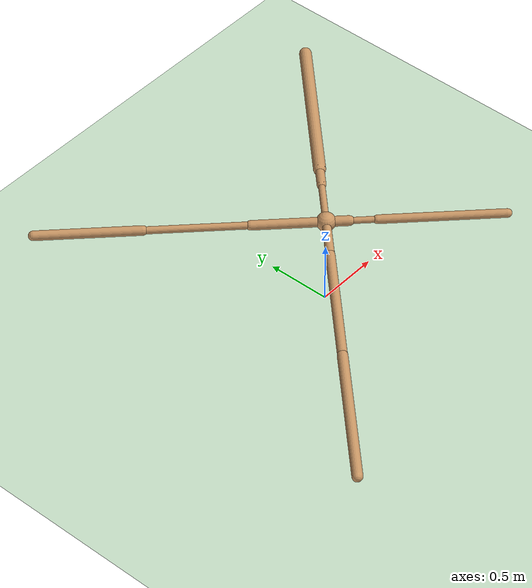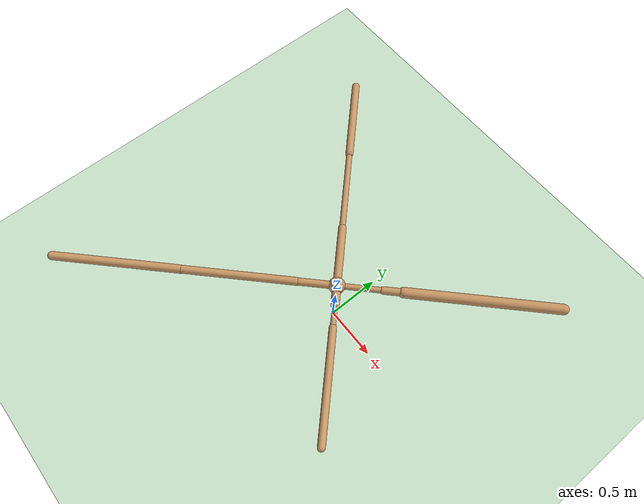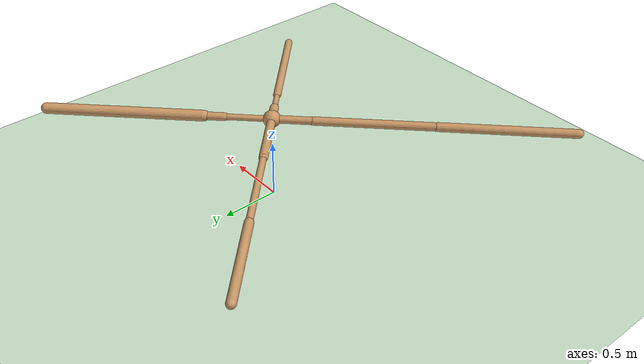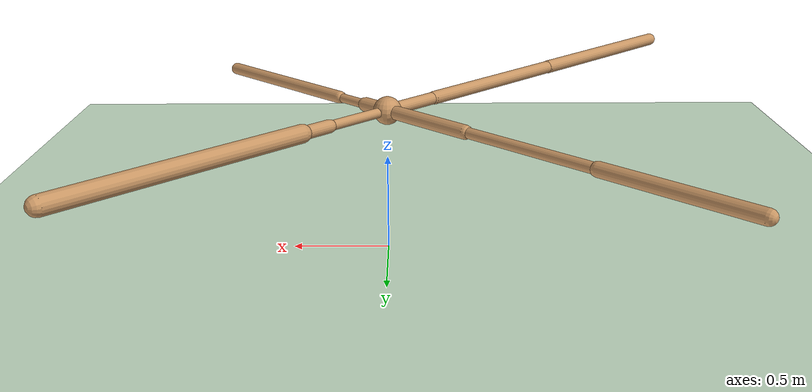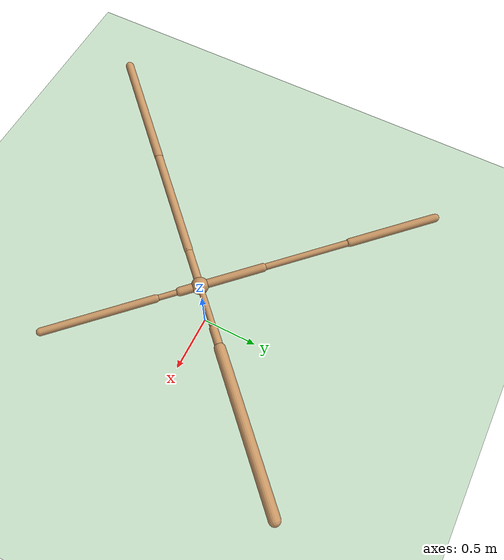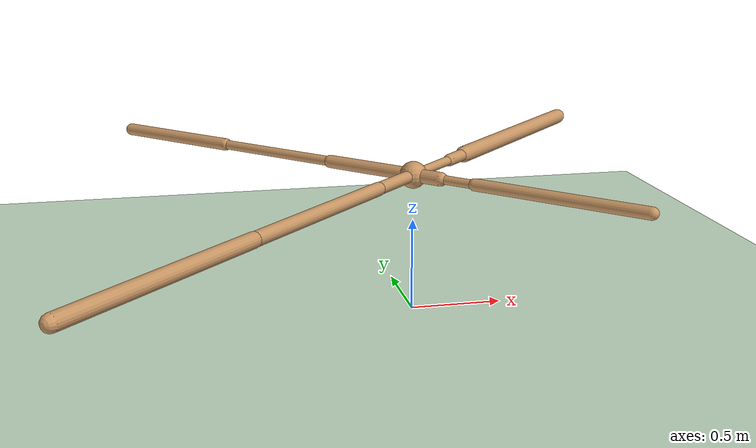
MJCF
<mujoco model="ant">
  <compiler angle="degree" coordinate="local" inertiafromgeom="true" />
  <option integrator="RK4" timestep="0.01" />
  <custom>
    <numeric data="0.0 0.0 0.55 1.0 0.0 0.0 0.0 0.0 1.0 0.0 -1.0 0.0 -1.0 0.0 1.0" name="init_qpos" />
  </custom>
  <default>
    <joint armature="1" damping="1" limited="true" />
    <geom conaffinity="0" condim="3" density="5.0" friction="1 0.5 0.5" margin="0.01" rgba="0.8 0.6 0.4 1" />
  </default>
  <asset>
    <texture builtin="gradient" height="100" rgb1="1 1 1" rgb2="0 0 0" type="skybox" width="100" />
    <texture builtin="flat" height="1278" mark="cross" markrgb="1 1 1" name="texgeom" random="0.01" rgb1="0.8 0.6 0.4" rgb2="0.8 0.6 0.4" type="cube" width="127" />
    <texture builtin="checker" height="100" name="texplane" rgb1="0 0 0" rgb2="0.8 0.8 0.8" type="2d" width="100" />
    <material name="MatPlane" reflectance="0.5" shininess="1" specular="1" texrepeat="60 60" texture="texplane" />
    <material name="geom" texture="texgeom" texuniform="true" />
  </asset>
  <worldbody>
    <light cutoff="100" diffuse="1 1 1" dir="-0 0 -1.3" directional="true" exponent="1" pos="0 0 1.3" specular=".1 .1 .1" />
    <geom conaffinity="1" condim="3" material="MatPlane" name="floor" pos="0 0 0" rgba="0.8 0.9 0.8 1" size="40 40 40" type="plane" />
    <body name="torso" pos="0 0 0.75">
      <camera name="track" mode="trackcom" pos="0 -11 5" xyaxes="1 0 0 0 0.5 1" />
      <geom name="torso_geom" pos="0 0 0" size="0.07235564291477203" type="sphere" />
      <joint armature="0" damping="0" limited="false" margin="0.01" name="root" pos="0 0 0" type="free" />
      <body name="front_left_leg" pos="0 0 0">
        <geom fromto="0 0 0 0.2729618549346924 0.2729618549346924 0" name="aux_1_geom" size="0.02547699771821499" type="capsule" />
        <body name="aux_1" pos="0.2729618549346924 0.2729618549346924 0">
          <joint axis="0 0 1" name="hip_1" pos="0.0 0.0 0.0" range="-30 30" type="hinge" />
          <geom fromto="0 0 0 0.11930053681135178 0.11930053681135178 0" name="left_leg_geom" size="0.03385996073484421" type="capsule" />
          <body name="left_leg_geom_aux" pos="0.11930053681135178 0.11930053681135178 0">
            <joint axis="-1 1 0" name="ankle_1" pos="0.0 0.0 0.0" range="30 70" type="hinge" />
            <geom fromto="0 0 0 0.9227303266525269 0.9227303266525269 0" name="left_ankle_geom" size="0.04622340947389603" type="capsule" />
          </body>
        </body>
      </body>
      <body name="front_right_leg" pos="0 0 0">
        <geom fromto="0 0 0 -0.378012090921402 0.378012090921402 0" name="aux_2_geom" size="0.03572775796055794" type="capsule" />
        <body name="aux_2" pos="-0.378012090921402 0.378012090921402 0">
          <joint axis="0 0 1" name="hip_2" pos="0.0 0.0 0.0" range="-30 30" type="hinge" />
          <geom fromto="0 0 0 -0.5372318625450134 0.5372318625450134 0" name="right_leg_geom" size="0.02713899128139019" type="capsule" />
          <body name="right_leg_geom_aux" pos="-0.5372318625450134 0.5372318625450134 0">
            <joint axis="1 1 0" name="ankle_2" pos="0.0 0.0 0.0" range="-70 -30" type="hinge" />
            <geom fromto="0 0 0 -0.5457198619842529 0.5457198619842529 0" name="right_ankle_geom" size="0.03583390638232231" type="capsule" />
          </body>
        </body>
      </body>
      <body name="back_leg" pos="0 0 0">
        <geom fromto="0 0 0 -0.24031037092208862 -0.24031037092208862 0" name="aux_3_geom" size="0.03269476071000099" type="capsule" />
        <body name="aux_3" pos="-0.24031037092208862 -0.24031037092208862 0">
          <joint axis="0 0 1" name="hip_3" pos="0.0 0.0 0.0" range="-30 30" type="hinge" />
          <geom fromto="0 0 0 -0.6955191493034363 -0.6955191493034363 0" name="back_leg_geom" size="0.035752102732658386" type="capsule" />
          <body name="back_leg_geom_aux" pos="-0.6955191493034363 -0.6955191493034363 0">
            <joint axis="-1 1 0" name="ankle_3" pos="0.0 0.0 0.0" range="-70 -30" type="hinge" />
            <geom fromto="0 0 0 -0.7816694974899292 -0.7816694974899292 0" name="third_ankle_geom" size="0.03790224343538284" type="capsule" />
          </body>
        </body>
      </body>
      <body name="right_back_leg" pos="0 0 0">
        <geom fromto="0 0 0 0.11704970896244049 -0.11704970896244049 0" name="aux_4_geom" size="0.03736826777458191" type="capsule" />
        <body name="aux_4" pos="0.11704970896244049 -0.11704970896244049 0">
          <joint axis="0 0 1" name="hip_4" pos="0.0 0.0 0.0" range="-30 30" type="hinge" />
          <geom fromto="0 0 0 0.14052225649356842 -0.14052225649356842 0" name="rightback_leg_geom" size="0.023748205974698067" type="capsule" />
          <body name="rightback_leg_geom_aux" pos="0.14052225649356842 -0.14052225649356842 0">
            <joint axis="1 1 0" name="ankle_4" pos="0.0 0.0 0.0" range="30 70" type="hinge" />
            <geom fromto="0 0 0 0.6558008193969727 -0.6558008193969727 0" name="fourth_ankle_geom" size="0.032719552516937256" type="capsule" />
          </body>
        </body>
      </body>
    </body>
  </worldbody>
  <actuator>
    <motor ctrllimited="true" ctrlrange="-1.0 1.0" joint="hip_4" gear="150" />
    <motor ctrllimited="true" ctrlrange="-1.0 1.0" joint="ankle_4" gear="150" />
    <motor ctrllimited="true" ctrlrange="-1.0 1.0" joint="hip_1" gear="150" />
    <motor ctrllimited="true" ctrlrange="-1.0 1.0" joint="ankle_1" gear="150" />
    <motor ctrllimited="true" ctrlrange="-1.0 1.0" joint="hip_2" gear="150" />
    <motor ctrllimited="true" ctrlrange="-1.0 1.0" joint="ankle_2" gear="150" />
    <motor ctrllimited="true" ctrlrange="-1.0 1.0" joint="hip_3" gear="150" />
    <motor ctrllimited="true" ctrlrange="-1.0 1.0" joint="ankle_3" gear="150" />
  </actuator>
</mujoco>
